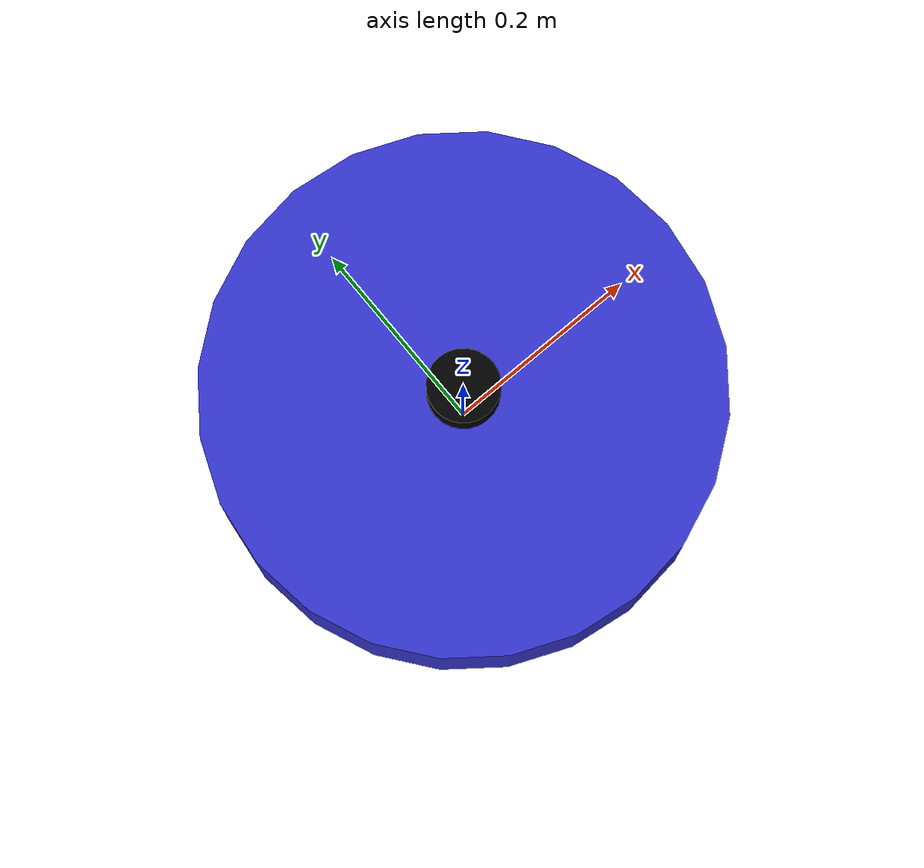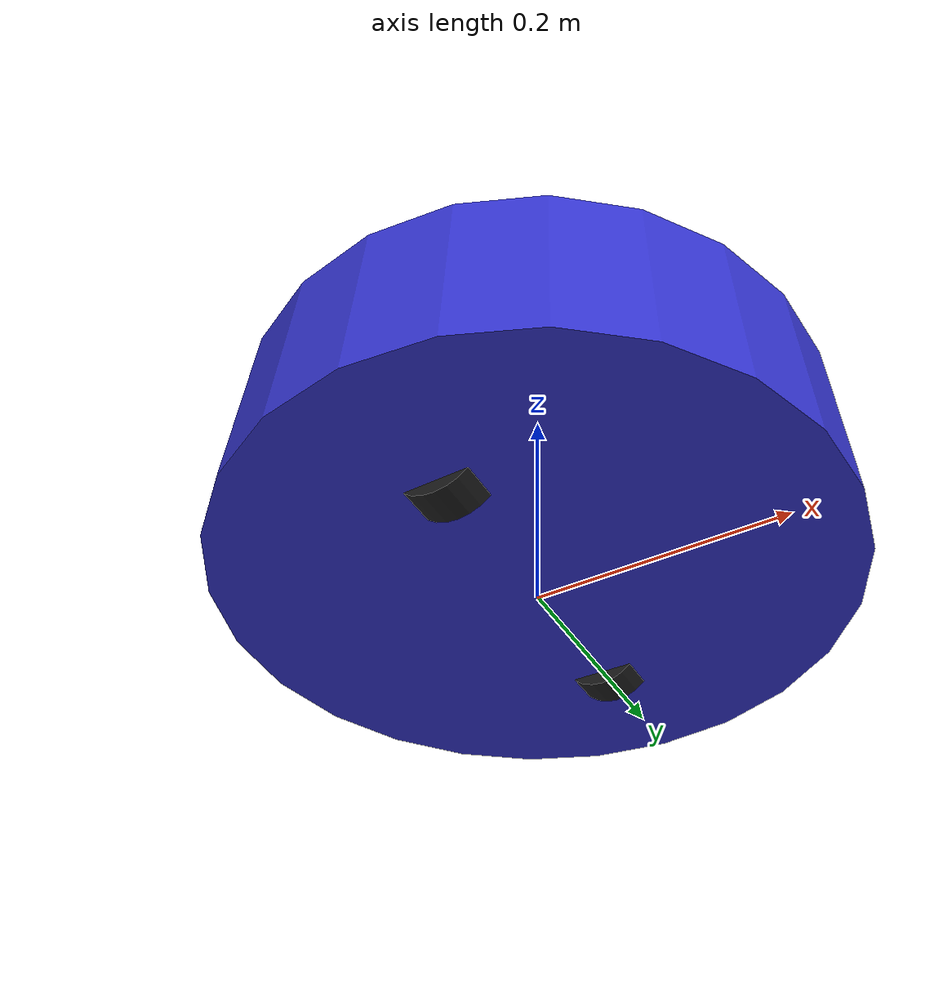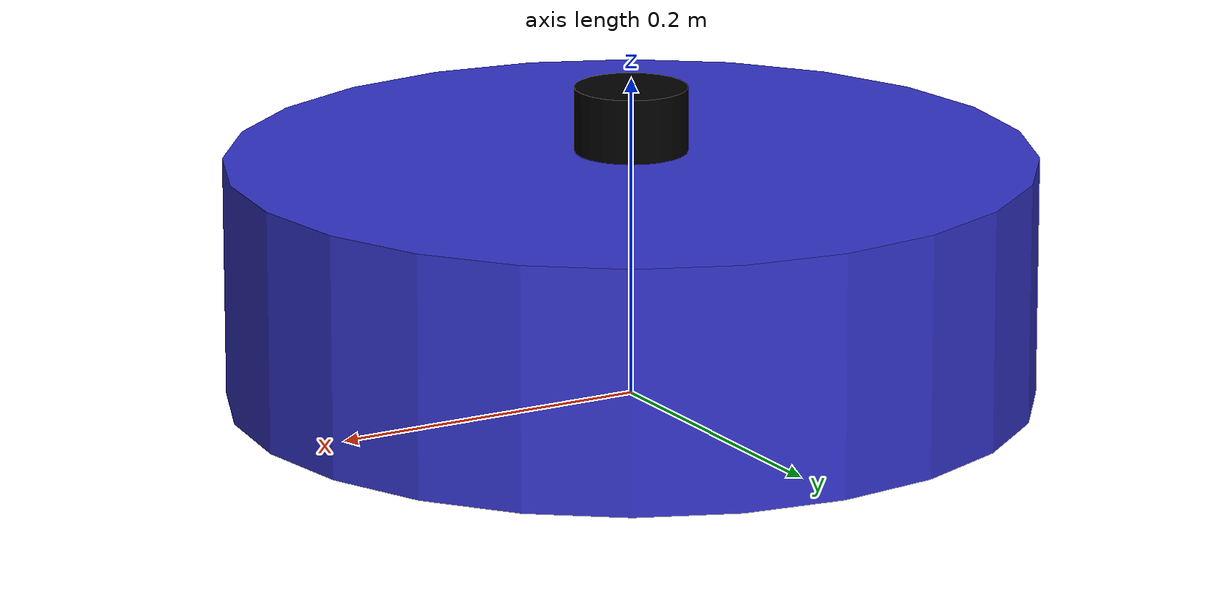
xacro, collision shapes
<?xml version="1.0"?>
<robot name="acrome_mini_robot" xmlns:xacro="http://www.ros.org/wiki/xacro">

  <xacro:property name="PI" value="3.141592653589793"/>

  <link name="base_link">
    <visual>
      <geometry>
        <mesh filename="file:///home/halit/acrome_mini_robot/src/set_slam/meshes/base_link.stl" scale="1 1 1"/>
      </geometry>
      <origin xyz="0 0 0.075" rpy="0 0 -1.5708"/>
      <material name="blue">
        <color rgba="0.2 0.2 0.8 1"/>
      </material>
    </visual>
    <collision>
      <geometry>
        <cylinder radius="0.25" length="0.15"/>
      </geometry>
      <origin xyz="0 0 0.075" rpy="0 0 -1.5708"/>
    </collision>
    <inertial>
      <mass value="5.0"/>
      <origin xyz="0 0 0.075" rpy="0 0 0"/>
      <inertia ixx="0.2083" ixy="0.0" ixz="0.0" iyy="0.2083" iyz="0.0" izz="0.3125"/>
    </inertial>
  </link>

  <link name="lidar_link">
    <visual>
      <geometry>
        <cylinder radius="0.035" length="0.04"/>
      </geometry>
      <origin xyz="0 0 0" rpy="0 0 0"/>
      <material name="black">
        <color rgba="0.0 0.0 0.0 1.0"/>
      </material>
    </visual>
    <collision>
      <geometry>
        <cylinder radius="0.035" length="0.04"/>
      </geometry>
      <origin xyz="0 0 0" rpy="0 0 0"/>
    </collision>
    <inertial>
      <mass value="0.1"/>
      <origin xyz="0 0 0" rpy="0 0 0"/>
      <inertia ixx="0.0001" ixy="0" ixz="0" iyy="0.0001" iyz="0" izz="0.0001"/>
    </inertial>
  </link>

  <joint name="lidar_joint" type="fixed">
    <parent link="base_link"/>
    <child link="lidar_link"/>
    <origin xyz="0 0 0.175" rpy="0 0 0"/>
  </joint>

  <link name="caster_support">
    <visual>
      <geometry>
        <cylinder radius="0.005" length="0.03"/>
      </geometry>
      <origin xyz="0 0 -0.015" rpy="0 0 0"/>
      <material name="gray">
        <color rgba="0.5 0.5 0.5 1"/>
      </material>
    </visual>
    <collision>
      <geometry>
        <cylinder radius="0.005" length="0.03"/>
      </geometry>
      <origin xyz="0 0 -0.015" rpy="0 0 0"/>
    </collision>
    <inertial>
      <mass value="0.05"/>
      <origin xyz="0 0 -0.015" rpy="0 0 0"/>
      <inertia ixx="0.00001" ixy="0" ixz="0" iyy="0.00001" iyz="0" izz="0.00001"/>
    </inertial>
  </link>

  <link name="caster_wheel">
    <visual>
      <geometry>
        <sphere radius="0.01"/>
      </geometry>
      <origin xyz="0 0 0" rpy="0 0 0"/>
      <material name="black">
        <color rgba="0.1 0.1 0.1 1"/>
      </material>
    </visual>
    <collision>
      <geometry>
        <sphere radius="0.01"/>
      </geometry>
      <origin xyz="0 0 0" rpy="0 0 0"/>
    </collision>
    <inertial>
      <mass value="0.1"/>
      <origin xyz="0 0 0" rpy="0 0 0"/>
      <inertia ixx="0.000016" ixy="0" ixz="0" iyy="0.000016" iyz="0" izz="0.000016"/>
    </inertial>
  </link>

  <link name="wheel_2">
    <visual>
      <geometry>
        <mesh filename="file:///home/halit/acrome_mini_robot/src/set_slam/meshes/left_wheel.stl" scale="0.36 0.36 0.36"/>
      </geometry>
      <origin xyz="0 0 0" rpy="1.5708 0 0"/>
      <material name="black">
        <color rgba="0.1 0.1 0.1 1"/>
      </material>
    </visual>
    <collision>
      <surface>
        <friction>
          <ode>
            <mu>1.0</mu>
            <mu2>1.0</mu2>
          </ode>
        </friction>
      </surface>
      <geometry>
        <cylinder radius="0.036" length="0.03"/>
      </geometry>
      <origin xyz="0 0 0" rpy="0 1.5708 0"/>
    </collision>
    <inertial>
      <mass value="0.5"/>
      <origin xyz="0 0 0" rpy="0 0 0"/>
      <inertia ixx="0.001" ixy="0.0" ixz="0.0" iyy="0.001" iyz="0.0" izz="0.001"/>
    </inertial>
  </link>

  <link name="wheel_3">
    <visual>
      <geometry>
        <mesh filename="file:///home/halit/acrome_mini_robot/src/set_slam/meshes/right_wheel.stl" scale="0.36 0.36 0.36"/>
      </geometry>
      <origin xyz="0 0 0" rpy="1.5708 0 0"/>
      <material name="black">
        <color rgba="0.1 0.1 0.1 1"/>
      </material>
    </visual>
    <collision>
      <surface>
        <friction>
          <ode>
            <mu>1.0</mu>
            <mu2>1.0</mu2>
          </ode>
        </friction>
      </surface>
      <geometry>
        <cylinder radius="0.036" length="0.03"/>
      </geometry>
      <origin xyz="0 0 0" rpy="0 1.5708 0"/>
    </collision>
    <inertial>
      <mass value="0.5"/>
      <origin xyz="0 0 0" rpy="0 0 0"/>
      <inertia ixx="0.001" ixy="0.0" ixz="0.0" iyy="0.001" iyz="0.0" izz="0.001"/>
    </inertial>
  </link>

  <joint name="base_to_caster_support" type="fixed">
    <parent link="base_link"/>
    <child link="caster_support"/>
    <origin xyz="0.085 0 0.04" rpy="0 0 0"/>
  </joint>

  <joint name="caster_support_to_wheel" type="continuous">
    <parent link="caster_support"/>
    <child link="caster_wheel"/>
    <origin xyz="0 0 -0.03" rpy="0 0 0"/>
    <axis xyz="0 0 1"/>
    <dynamics damping="0.001" friction="0.001"/>
  </joint>

  <joint name="base_to_wheel_2" type="continuous">
    <parent link="base_link"/>
    <child link="wheel_2"/>
    <origin xyz="0 0.129 0.025" rpy="0 0 -1.5708"/>
    <axis xyz="1 0 0"/>
    <dynamics damping="0.1" friction="0.01"/>
  </joint>

  <joint name="base_to_wheel_3" type="continuous">
    <parent link="base_link"/>
    <child link="wheel_3"/>
    <origin xyz="0 -0.129 0.025" rpy="0 0 -1.5708"/>
    <axis xyz="1 0 0"/>
    <dynamics damping="0.1" friction="0.01"/>
  </joint>

  <ros2_control name="GazeboSimSystem" type="system">
    <hardware>
      <plugin>gz_ros2_control/GazeboSimSystem</plugin>
    </hardware>
    <joint name="base_to_wheel_2">
      <command_interface name="velocity">
        <param name="min">-10</param>
        <param name="max">10</param>
      </command_interface>
      <state_interface name="position"/>
      <state_interface name="velocity"/>
      <state_interface name="effort"/>
    </joint>
    <joint name="base_to_wheel_3">
      <command_interface name="velocity">
        <param name="min">-10</param>
        <param name="max">10</param>
      </command_interface>
      <state_interface name="position"/>
      <state_interface name="velocity"/>
      <state_interface name="effort"/>
    </joint>
    <joint name="caster_support_to_wheel">
      <state_interface name="position"/>
      <state_interface name="velocity"/>
      <state_interface name="effort"/>
    </joint>
  </ros2_control>

  <gazebo>
    <plugin filename="gz_ros2_control-system" name="gz_ros2_control::GazeboSimROS2ControlPlugin">
      <parameters>$(find set_slam)/config/controllers_params.yaml</parameters>
    </plugin>
  </gazebo>

  <gazebo reference="base_link">
    <mu1>0.1</mu1>
    <mu2>0.1</mu2>
    <material>Gazebo/Blue</material>
  </gazebo>

  <gazebo reference="caster_support">
    <mu1>0.1</mu1>
    <mu2>0.1</mu2>
    <material>Gazebo/Grey</material>
  </gazebo>

  <gazebo reference="caster_wheel">
    <mu1>0.1</mu1>
    <mu2>0.1</mu2>
    <kp>2000.0</kp>
    <kd>5.0</kd>
    <minDepth>0.001</minDepth>
    <maxVel>1.0</maxVel>
    <material>Gazebo/Black</material>
  </gazebo>

  <gazebo reference="wheel_2">
    <mu1>1.0</mu1>
    <mu2>1.0</mu2>
    <kp>1000000.0</kp>
    <kd>100.0</kd>
    <minDepth>0.001</minDepth>
    <maxVel>1.0</maxVel>
    <material>Gazebo/Black</material>
  </gazebo>

  <gazebo reference="wheel_3">
    <mu1>1.0</mu1>
    <mu2>1.0</mu2>
    <kp>1000000.0</kp>
    <kd>100.0</kd>
    <minDepth>0.001</minDepth>
    <maxVel>1.0</maxVel>
    <material>Gazebo/Black</material>
  </gazebo>

</robot>
